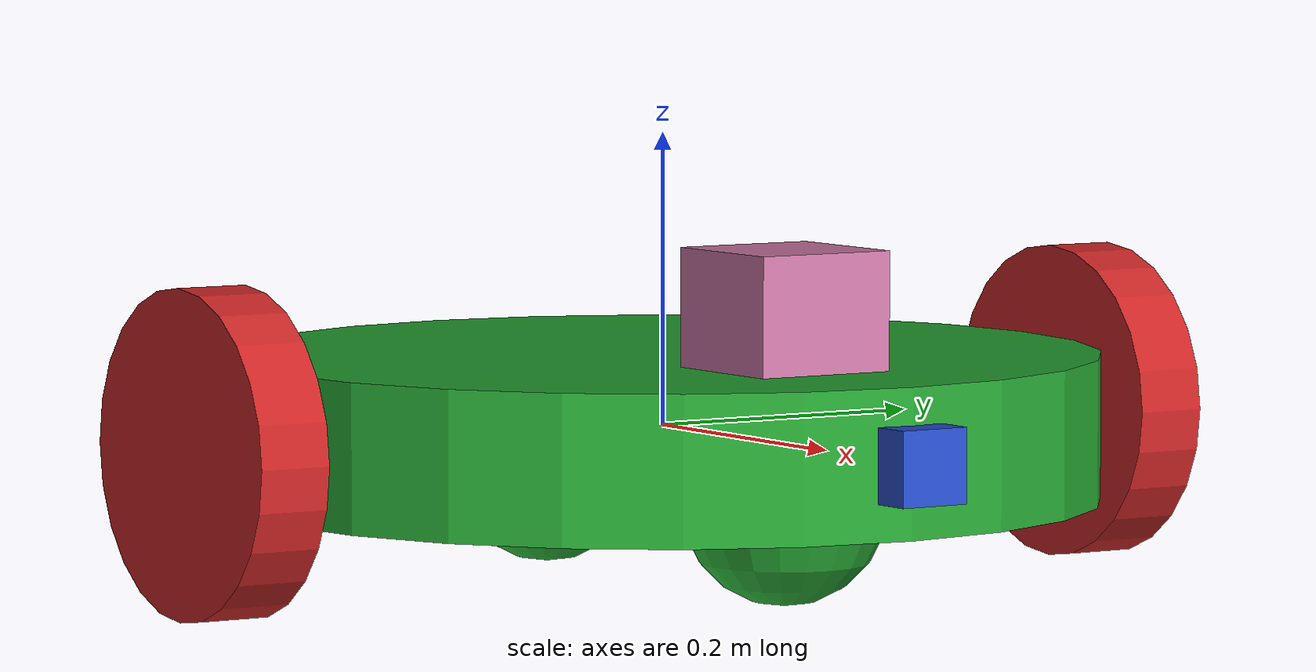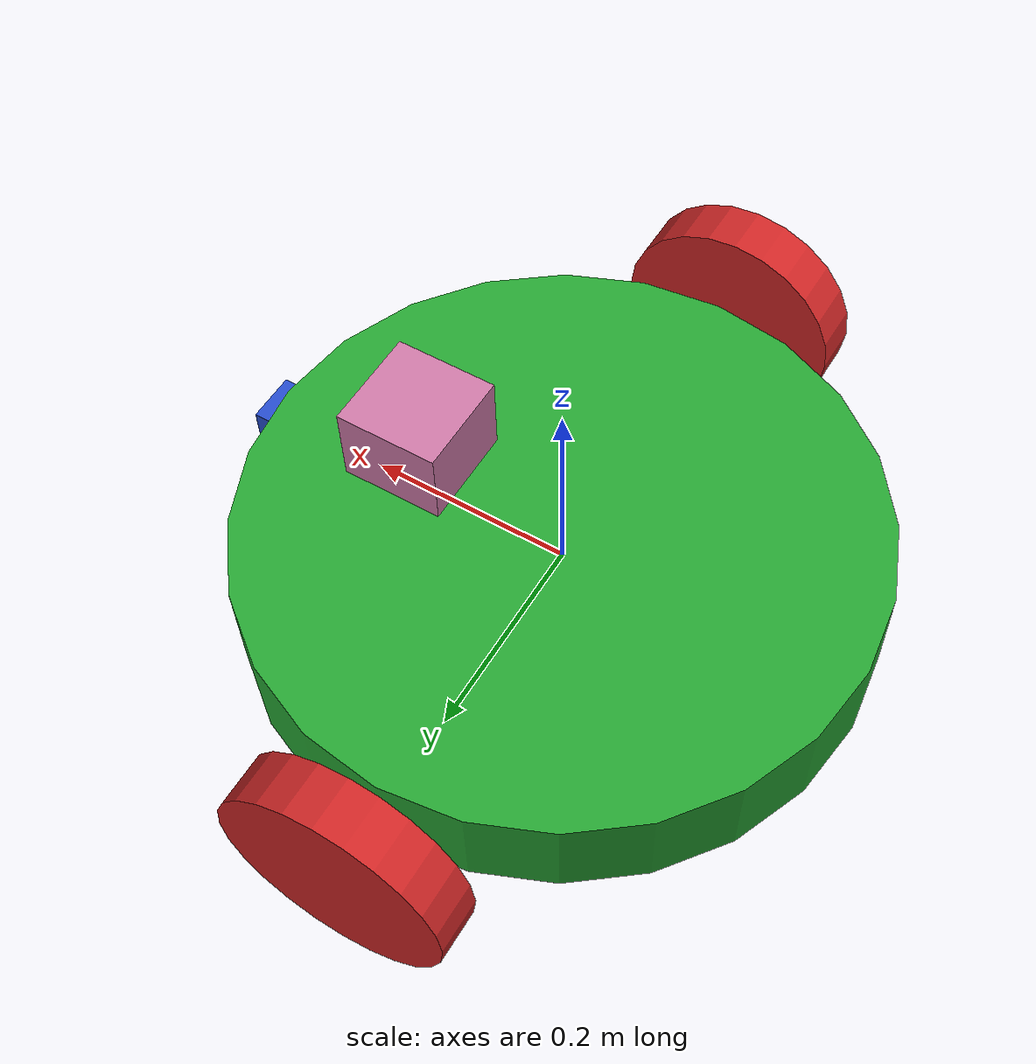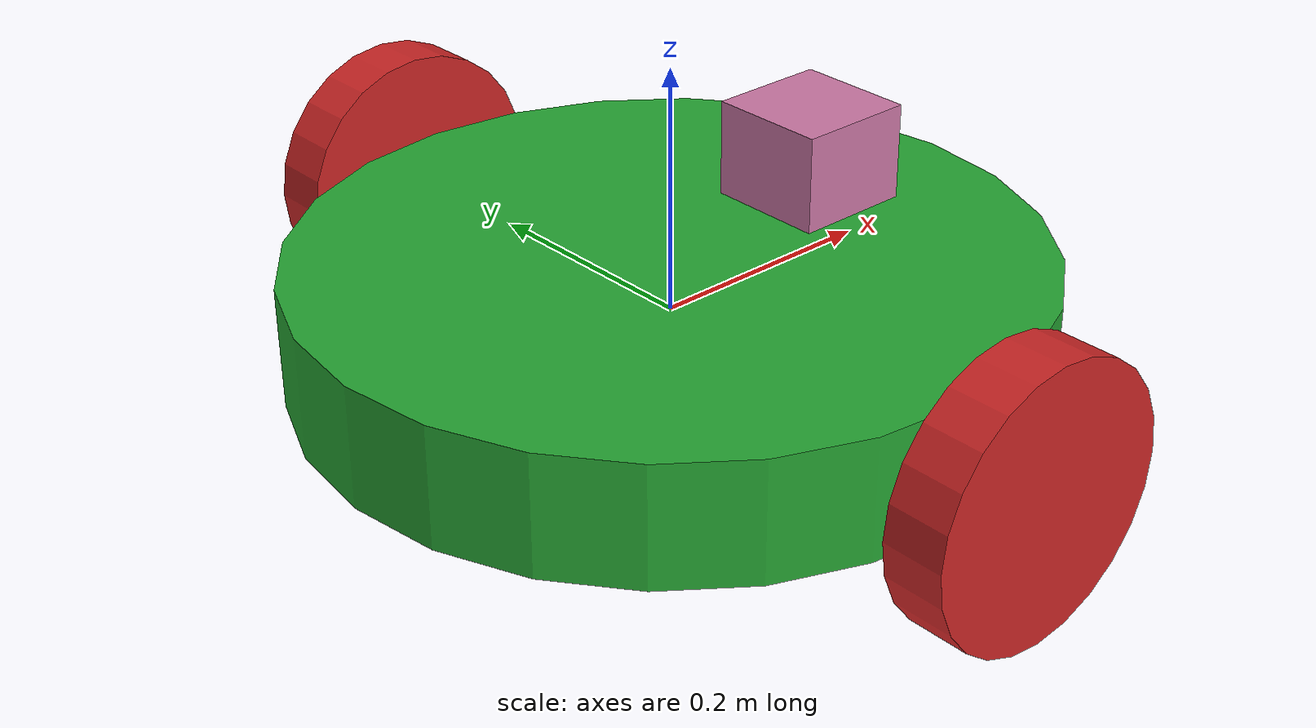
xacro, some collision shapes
<?xml version='1.0'?>

<robot name="my_robot" xmlns:xacro="http://www.ros.org/wiki/xacro">

  <xacro:include filename="$(find my_robot)/urdf/my_robot.gazebo" />

  <link name="robot_footprint"></link>

  <joint name="robot_footprint_joint" type="fixed">
    <origin xyz="0 0 0" rpy="0 0 0" />
    <parent link="robot_footprint"/>
    <child link="chassis" />
  </joint>

  <link name='chassis'>
    <pose>0 0 0.1 0 0 0</pose>

    <inertial>
      <mass value="10.0"/>
      <origin xyz="0.0 0 0" rpy=" 0 0 0"/>
      <inertia
          ixx="0.1" ixy="0" ixz="0"
          iyy="0.1" iyz="0"
          izz="0.1"
      />
    </inertial>

    <collision name='collision'>
      <origin xyz="0 0 0" rpy=" 0 0 0"/>
      <geometry>
        <cylinder radius="0.3" length="0.1"/>
      </geometry>
    </collision>

    <visual name='chassis_visual'>
      <origin xyz="0 0 0" rpy=" 0 0 0"/>
      <geometry>
        <cylinder radius="0.3" length="0.1"/>
      </geometry>
    </visual>

    <collision name='front_caster_collision'>
      <origin xyz="0.15 0 -0.038" rpy=" 0 0 0"/>
      <geometry>
        <sphere radius="0.07"/>
      </geometry>
    </collision>

    <visual name='front_caster_visual'>
      <origin xyz="0.15 0 -0.038" rpy=" 0 0 0"/>
      <geometry>
        <sphere radius="0.07"/>
      </geometry>
    </visual>

    <collision name='back_caster_collision'>
      <origin xyz="-0.15 0 -0.038" rpy=" 0 0 0"/>
      <geometry>
        <sphere radius="0.07"/>
      </geometry>
    </collision>

    <visual name='back_caster_visual'>
      <origin xyz="-0.15 0 -0.038" rpy=" 0 0 0"/>
      <geometry>
        <sphere radius="0.07"/>
      </geometry>
    </visual>

  </link>

  <link name='left_wheel'>

    <inertial>
      <mass value="5.0"/>
      <origin xyz="0 0 0" rpy=" 0 0 0"/>
      <inertia
          ixx="0.1" ixy="0" ixz="0"
          iyy="0.1" iyz="0"
          izz="0.1"
      />
    </inertial>

    <collision name='collision'>
      <origin xyz="0 0 0" rpy=" 0 1.5707 1.5707"/>
      <geometry>
        <cylinder radius="0.11" length="0.05"/>
      </geometry>
    </collision>

    <visual name='left_wheel_visual'>
      <origin xyz="0 0 0" rpy=" 0 1.5707 1.5707"/>
      <geometry>
        <cylinder radius="0.11" length="0.05"/>
      </geometry>
    </visual>
  </link>

  <joint type="continuous" name="left_wheel_hinge">
    <origin xyz="0 0.35 0" rpy="0 0 0"/>
    <child link="left_wheel"/>
    <parent link="chassis"/>
    <axis xyz="0 1 0" rpy="0 0 0"/>
    <limit effort="10000" velocity="1000"/>
    <dynamics damping="1.0" friction="1.0"/>
  </joint>

  <link name='right_wheel'>

    <inertial>
      <mass value="5.0"/>
      <origin xyz="0 0 0" rpy=" 0 0 0"/>
      <inertia
          ixx="0.1" ixy="0" ixz="0"
          iyy="0.1" iyz="0"
          izz="0.1"
      />
    </inertial>

    <collision name='collision'>
      <origin xyz="0 0 0" rpy=" 0 1.5707 1.5707"/>
      <geometry>
        <cylinder radius="0.11" length="0.05"/>
      </geometry>
    </collision>

    <visual name='right_wheel_visual'>
      <origin xyz="0 0 0" rpy=" 0 1.5707 1.5707"/>
      <geometry>
        <cylinder radius="0.11" length="0.05"/>
      </geometry>
    </visual>
  </link>

  <joint type="continuous" name="right_wheel_hinge">
    <origin xyz="0 -0.35 0" rpy="0 0 0"/>
    <child link="right_wheel"/>
    <parent link="chassis"/>
    <axis xyz="0 1 0" rpy="0 0 0"/>
    <limit effort="10000" velocity="1000"/>
    <dynamics damping="1.0" friction="1.0"/>
  </joint>

  <!-- camera -->
  <link name='camera'>

    <inertial>
      <mass value="0.1"/>
      <origin xyz="0 0 0" rpy=" 0 0 0"/>
      <inertia
          ixx="1e-6" ixy="0" ixz="0"
          iyy="1e-6" iyz="0"
          izz="1e-6"
      />
    </inertial>

    <collision name='collision'>
      <origin xyz="0 0 0" rpy=" 0 0 0"/>
      <geometry>
        <box size="0.05 0.05 0.05"/>
      </geometry>
    </collision>

    <visual name='camera_visual'>
      <origin xyz="0 0 0" rpy=" 0 0 0"/>
      <geometry>
        <box size="0.05 0.05 0.05"/>
      </geometry>
    </visual>
  </link>

  <joint type="fixed" name="camera_joint">
    <origin xyz="0.3 0 0" rpy="0 0 0"/>
    <child link="camera"/>
    <parent link="chassis"/>
    <axis xyz="0 1 0" rpy="0 0 0"/>
    <limit effort="10000" velocity="1000"/>
    <dynamics damping="1.0" friction="1.0"/>
  </joint>

  <!-- Optical camera link -->
  <joint name="camera_optical_joint" type="fixed">
    <origin xyz="0 0 0" rpy="-1.5707 0 -1.5707"/>
    <parent link="camera"/>
    <child link="camera_link_optical"/>
  </joint>

  <link name="camera_link_optical">
  </link>

  <!-- lidar -->
  <link name='hokuyo'>

    <inertial>
      <mass value="1e-5"/>
      <origin xyz="0 0 0" rpy=" 0 0 0"/>
      <inertia
          ixx="1e-6" ixy="0" ixz="0"
          iyy="1e-6" iyz="0"
          izz="1e-6"
      />
    </inertial>

    <collision name='collision'>
      <origin xyz="0 0 0" rpy=" 0 0 0"/>
      <geometry>
        <box size="0.1 0.1 0.1"/>
      </geometry>
    </collision>

    <visual name='hokuyo_visual'>
      <origin xyz="0 0 0" rpy=" 0 0 0"/>
      <geometry>
        <mesh filename="package://my_robot/meshes/hokuyo.dae"/>
      </geometry>
    </visual>
  </link>

  <joint type="fixed" name="hokuyo_joint">
    <origin xyz="0.15 0 0.08" rpy="0 0 0"/>
    <child link="hokuyo"/>
    <parent link="chassis"/>
    <axis xyz="0 1 0" rpy="0 0 0"/>
    <limit effort="10000" velocity="1000"/>
    <dynamics damping="1.0" friction="1.0"/>
  </joint>

  <gazebo reference="chassis">
    <material>Gazebo/Green</material>
  </gazebo>
  <gazebo reference="camera">
    <material>Gazebo/Blue</material>
  </gazebo>
  <gazebo reference="left_wheel">
    <material>Gazebo/Red</material>
  </gazebo>
  <gazebo reference="right_wheel">
    <material>Gazebo/Red</material>
  </gazebo>

</robot>
